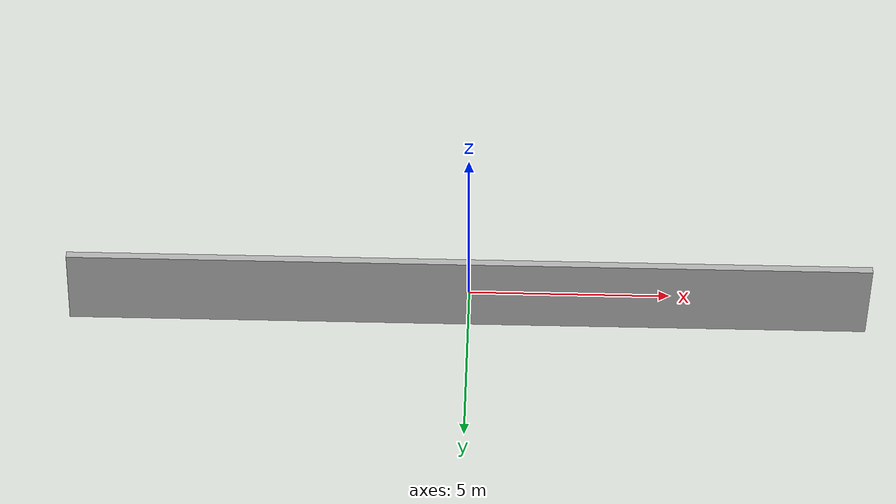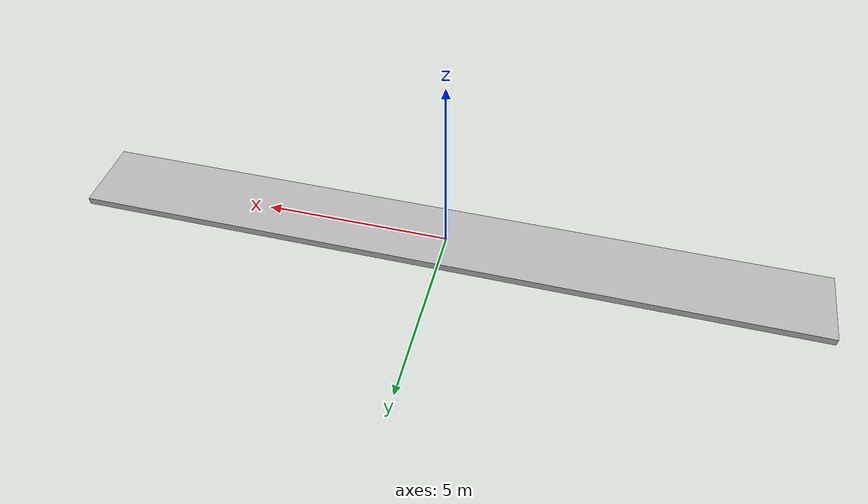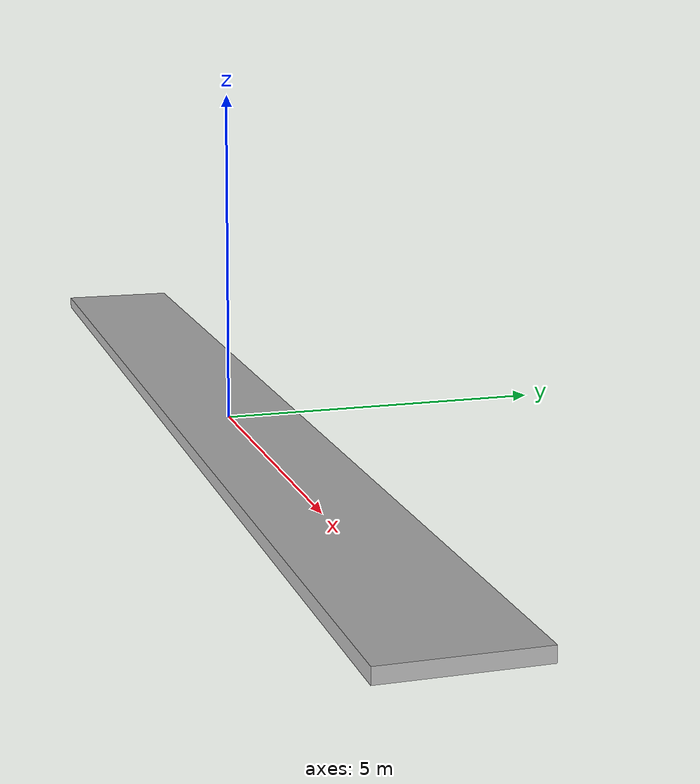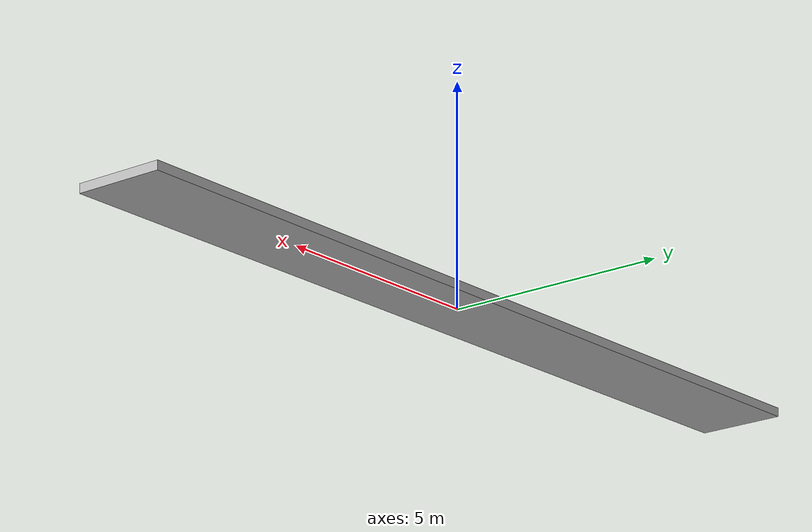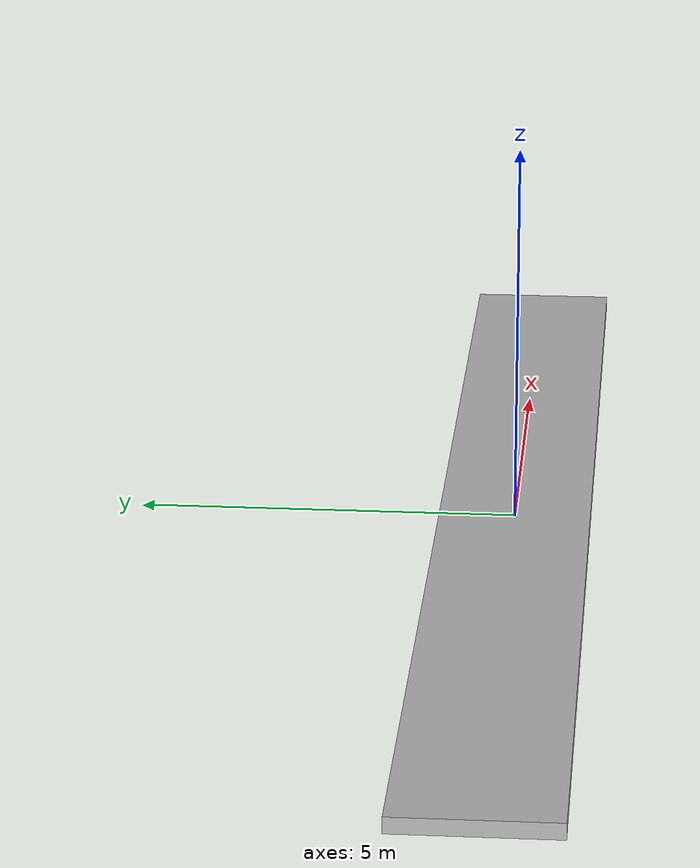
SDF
<?xml version='1.0' encoding='utf-8'?>
<sdf version="1.6">
  <model name="flat_strip">
    <static>true</static>
    <link name="body">
      <pose>0 0 0 1.5708 0 3.14</pose>
      <visual name="visual">
        <geometry>
          <mesh>
            <scale>1 1 1</scale>
            <uri>meshes/flat_strip.obj</uri>
          </mesh>
        </geometry>
      </visual>
      <collision name="collision">
        <geometry>
          <mesh>
            <scale>1 1 1</scale>
            <uri>meshes/flat_strip.obj</uri>
          </mesh>
        </geometry>
      </collision>
    </link>
  </model>
</sdf>
